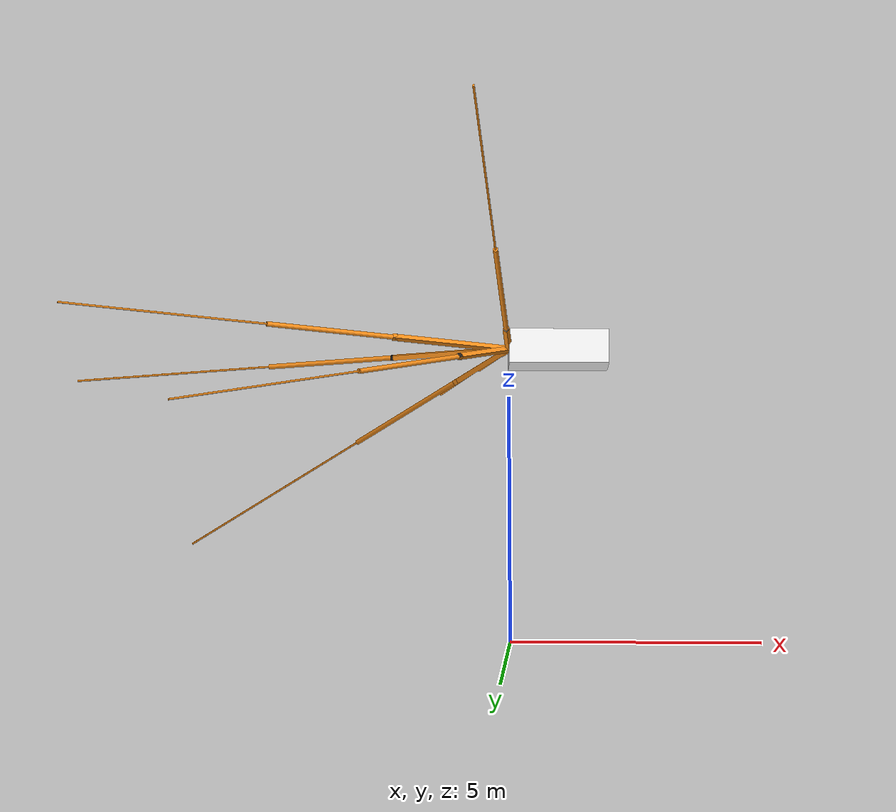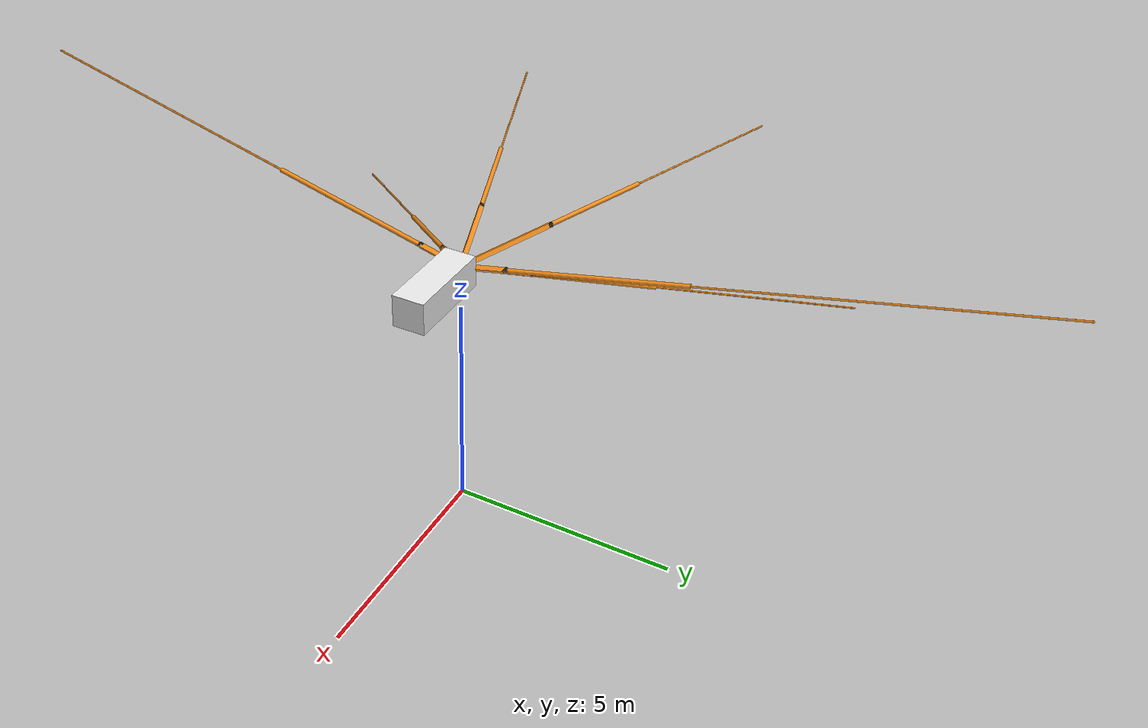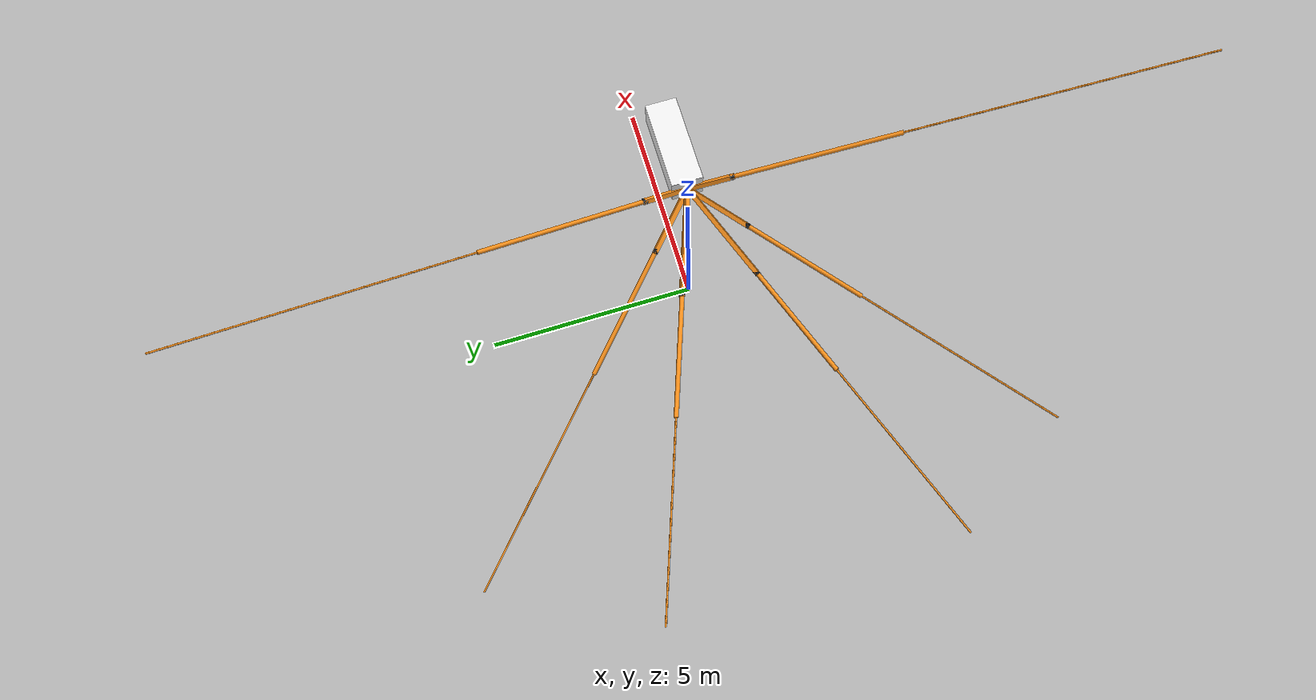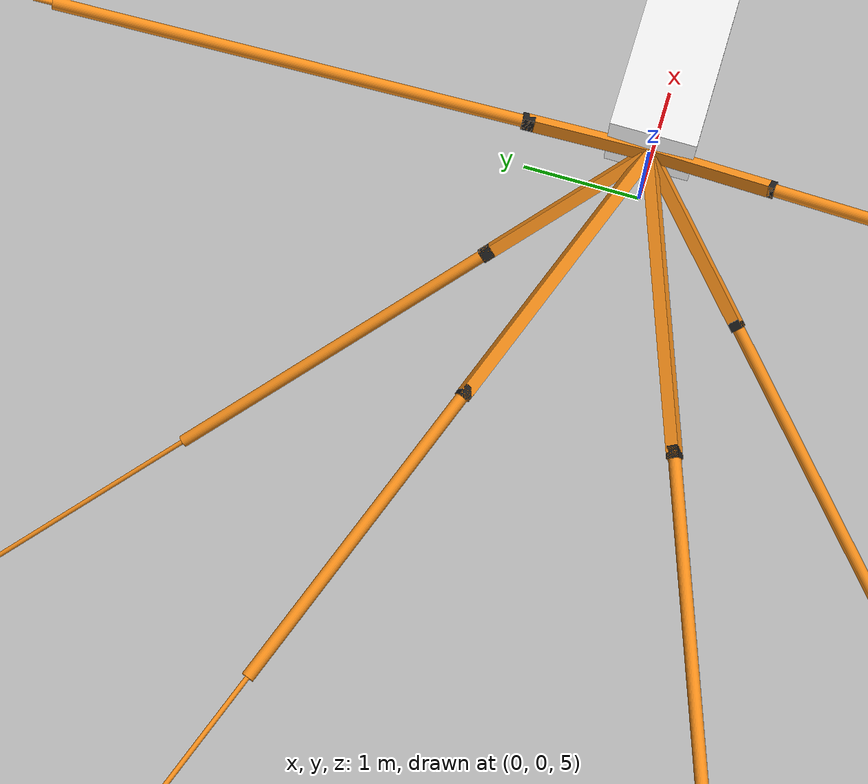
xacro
<?xml version="1.0"?>
<!-- Synthesis of an Ant Leg -->
<robot name="antmodel" xmlns:xacro="http://www.ros.org/wiki/xacro">

  <!-- Constants for robot dimensions -->
  <xacro:property name="PI" value="3.1415926535897931"/>
  <xacro:property name="mass" value="0.024357719" /> <!-- arbitrary value for mass -->
  <xacro:property name="width" value="0.1" /> <!-- Square dimensions (widthxwidth) of beams -->
  <xacro:property name="height1" value="5" /> <!-- Link 1 -->
  <xacro:property name="height2" value="0.1" /> <!-- Link 2 -->
  <xacro:property name="height3" value="0.1" /> <!-- Link 3 -->

  <!-- Base transformation parameters -->
  <xacro:property name="AZ" value="6" /> <!-- -1*min(PZ(:,5)) 4.0127-->
  <xacro:property name="baseX" value="2.5329" /> <!-- link{1,2}(10,1) -->
  <xacro:property name="baseY" value="0.7012" /> <!-- link{1,2}(10,2) -->
  <xacro:property name="baseZ" value="-0.1418" /> <!-- link{1,2}(10,3) -->
  <xacro:property name="baseLf" value="2.4583" /> <!-- norm(links{1,2}(10,:)) --> <!-- Alessandro front: 2.632-->
  <xacro:property name="baseLm" value="1.5195" /> <!-- norm(links{1,2}(10,:)) -->
  <xacro:property name="baseLr" value="0.9946" /> <!-- norm(links{1,2}(10,:)) -->

 	<!-- front leg -->
  <xacro:property name="ARF" value="2.0197" /> <!-- tr2rpy(A{50})(1) --> <!-- Roll Pitch Yaw-->
  <xacro:property name="APF" value="-0.0082" /> <!-- tr2rpy(A{50})(2) -->
  <xacro:property name="AYF" value="-2.7991" /> <!-- tr2rpy(A{50})(3) -->
 	<!-- middle leg -->
  <xacro:property name="ARM" value="0.5579" /> <!-- tr2rpy(A{50})(1) -->
  <xacro:property name="APM" value="0.2813" /> <!-- tr2rpy(A{50})(2) -->
  <xacro:property name="AYM" value="-2.3565" /> <!-- tr2rpy(A{50})(3) -->
 	<!-- rear leg -->
  <xacro:property name="ARR" value="2.5284" /> <!-- tr2rpy(A{50})(1) -->
  <xacro:property name="APR" value="-0.1604" /> <!-- tr2rpy(A{50})(2) -->
  <xacro:property name="AYR" value="-1.6656" /> <!-- tr2rpy(A{50})(3) -->

  <!-- Antleg Parameter --> 	<!-- front leg -->
  <xacro:property name="femur_lenF" value="2.6999"/> <!-- length of femur segment stats{2,2}(1,3)-->
  <xacro:property name="femur_radF" value="0.05"/> <!-- radius of femur segment -->
  <xacro:property name="tibia_lenF" value="4.2717"/> <!-- length of tibia + tarsus segment stats{2,2}(1,4)-->
  <xacro:property name="tibia_radF" value="0.02"/>

  <!-- Antleg Parameter --> 	<!-- middle leg -->
  <xacro:property name="femur_lenM" value="2.9503"/> <!-- length of femur segment stats{2,2}(1,3)-->
  <xacro:property name="femur_radM" value="0.05"/> <!-- radius of femur segment -->
  <xacro:property name="tibia_lenM" value="5.1827"/> <!-- length of tibia + tarsus segment stats{2,2}(1,4)-->
  <xacro:property name="tibia_radM" value="0.02"/>

  <!-- Antleg Parameter --> 	<!-- rear leg -->
  <xacro:property name="femur_lenR" value="3.7715"/> <!-- length of femur segment stats{2,2}(1,3)-->
  <xacro:property name="femur_radR" value="0.05"/> <!-- radius of femur segment -->
  <xacro:property name="tibia_lenR" value="6.8218"/> <!-- length of tibia + tarsus segment stats{2,2}(1,4)-->
  <xacro:property name="tibia_radR" value="0.02"/>

  <!-- Body Parameters -->
  <xacro:property name="body_height" value="0.7" /> <!-- Height of body rectangle -->
  <xacro:property name="body_length" value="2" /> <!-- Length of body rectangle  -->
  <xacro:property name="body_width" value="0.7" /> <!-- Width of body rectangle  -->
  <xacro:property name="body_mass" value="0.97559947" /> <!-- Body mass -->

  <!-- Import all Gazebo-customization elements, including Gazebo colors -->
  <xacro:include filename="$(find antmodel_description)/urdf/antmodel.gazebo" />
  <!-- Import Rviz colors -->
  <xacro:include filename="$(find antmodel_description)/urdf/materials.xacro" />

<!-- to fix body-->
<link name="world" />
<joint name="world_joint"  type="fixed">
    <origin xyz="0 0 ${AZ/2}" rpy="0 0 0" />
    <parent link="world"/>
    <child link="body"/>
</joint>

<link name="body">
    <visual>
      <origin xyz="${body_length/2} 0 ${AZ/2}" rpy="0 0 0"/>
      <geometry>
	<box size="${body_length} ${body_width} ${body_height}"/>
      </geometry>
    </visual>

    <inertial>
      <origin xyz="0 0 0" rpy="0 0 0"/>
      <mass value="${body_mass}"/>
<inertia ixx="3.1081800"  ixy="-0.25460189"  ixz="2.0318174" iyy="6.3787776" iyz="0.16417863" izz="5.3316425" />
        </inertial>
  </link>

   <gazebo reference="body">
   <material>Gazebo/White</material>
  </gazebo>

<!-- Leg Macro -->
<xacro:macro name="leg" params="suffix xyz rpy baseL femur_len femur_rad tibia_len tibia_rad">

 <!-- Base -->
  <link name="base_${suffix}">

    <visual>
      <origin xyz="${baseL/2} 0 0" rpy="0 0 0"/>
      <geometry>
	<box size="${baseL} ${width} ${width}"/>
      </geometry>
      <material name="orange"/>
    </visual>

    <inertial>
      <origin xyz="0 0 ${height1/2}" rpy="0 0 0"/>
      <mass value="${mass}"/>
      <inertia
	  ixx="${mass / 12.0 * (width*width + height1*height1)}" ixy="0.0" ixz="0.0"
	  iyy="${mass / 12.0 * (height1*height1 + width*width)}" iyz="0.0"
	  izz="${mass / 12.0 * (width*width + width*width)}"/>
    </inertial>
  </link>

<!-- Coxa Link -->
  <link name="coxa_${suffix}">
    <collision>
      <origin xyz="0 0 0" rpy="0 0 0"/>
      <geometry>
	<box size="${width} ${width} ${height2}"/>
      </geometry>
    </collision>

    <visual>
      <origin xyz="0 0 0" rpy="0 0 0"/>
      <geometry>
	<box size="${width} ${width} ${height2}"/>
      </geometry>
      <material name="black"/>
    </visual>

    <inertial>
      <origin xyz="0 0 0" rpy="0 0 0"/>
      <mass value="${mass}"/>
    <inertia ixx="0.0051411124"  ixy="-0.00057530255"  ixz="-0.000024729049" iyy="0.0081915737" iyz="-0.000019223094" izz="0.0011379812" />
</inertial>
  </link>

    <!-- Link DOF1 -->
  <link name="link1_${suffix}">
    <collision>
      <origin xyz="0 0 0" rpy="0 0 0"/>
      <geometry>
	<box size="${width} ${width} ${height2}"/>
      </geometry>
    </collision>

    <visual>
      <origin xyz="0 0 0" rpy="0 0 0"/>
      <geometry>
	<box size="${width} ${width} ${height2}"/>
      </geometry>
      <material name="black"/>
    </visual>

    <inertial>
      <origin xyz="0 0 0" rpy="0 0 0"/>
      <mass value="${mass}"/>
    <inertia ixx="0.0051411124"  ixy="-0.00057530255"  ixz="-0.000024729049" iyy="0.0081915737" iyz="-0.000019223094" izz="0.0011379812" />
</inertial>
  </link>

    <!-- Link DOF2 -->
  <link name="link2_${suffix}">
    <collision>
      <origin xyz="0 0 0" rpy="0 0 0"/>
      <geometry>
	<box size="${width} ${width} ${height3}"/>
      </geometry>
    </collision>

    <visual>
      <origin xyz="0 0 0" rpy="0 0 0"/>
      <geometry>
	<box size="${width} ${width} ${height3}"/>
      </geometry>
      <material name="orange"/>
    </visual>

    <inertial>
      <origin xyz="0 0 0" rpy="0 0 0"/>
      <mass value="${mass}"/>
    <inertia ixx="0.0051411124"  ixy="-0.00057530255"  ixz="-0.000024729049" iyy="0.0081915737" iyz="-0.000019223094" izz="0.0011379812" />
</inertial>
  </link>

  <!-- Femur Link -->
  <link name="femur_${suffix}">
    <collision>
      <origin xyz="${femur_len/2} 0 0" rpy="0 ${PI/2} 0"/>
      <geometry>
	<cylinder length="${femur_len}" radius="${femur_rad}"/>
      </geometry>
    </collision>

    <visual>
      <origin xyz="${femur_len/2} 0 0" rpy="0 ${PI/2} 0"/>
      <geometry>
	<cylinder length="${femur_len}" radius="${femur_rad}"/>
      </geometry>
      <material name="orange"/>
    </visual>

    <inertial>
      <origin xyz="${femur_len/2} 0 0" rpy="0 0 0"/>
      <mass value="${mass}"/>
    <inertia ixx="0.0051411124"  ixy="-0.00057530255"  ixz="-0.000024729049" iyy="0.0081915737" iyz="-0.000019223094" izz="0.0011379812" />
</inertial>
  </link>

  <!-- Tibia Link -->
  <link name="tibia_${suffix}">
    <collision>
      <origin xyz="${tibia_len/2} 0 0" rpy="0 ${PI/2} 0"/>
      <geometry>
	<cylinder length="${tibia_len}" radius="${tibia_rad}"/>
      </geometry>
    </collision>

    <visual>
      <origin xyz="${tibia_len/2} 0 0" rpy="0 ${PI/2} 0"/>
      <geometry>
	<cylinder length="${tibia_len}" radius="${tibia_rad}"/>
      </geometry>
      <material name="orange"/>
    </visual>

    <inertial>
      <origin xyz="${tibia_len/2} 0 0" rpy="0 0 0"/>
      <mass value="${mass}"/>
    <inertia ixx="0.0051411124"  ixy="-0.00057530255"  ixz="-0.000024729049" iyy="0.0081915737" iyz="-0.000019223094" izz="0.0011379812" />
</inertial>

<mu1>1</mu1>
<mu2>1</mu2>
  </link>

<joint name="j_body_${suffix}" type="fixed">
        <parent link="body"/>
        <child link="base_${suffix}"/>
	<origin xyz="${xyz}" rpy="${rpy}" />
</joint>

  <!-- Frame {A} -->
  <joint name="A_${suffix}" type="fixed">
    <parent link="base_${suffix}"/>
    <child link="coxa_${suffix}"/>
    <origin xyz="${baseL} 0 0"/>
  </joint>

  <!-- DOF1 = q1 -->
  <joint name="joint1_${suffix}" type="continuous">
    <parent link="coxa_${suffix}"/>
    <child link="link1_${suffix}"/>
    <origin xyz="0 0 0" rpy="0 0 0"/>
    <axis xyz="0 0 1"/>
    <dynamics damping="1"/>
  </joint>

  <!-- DOF2 = q2 -->
  <joint name="joint2_${suffix}" type="continuous">
    <parent link="link1_${suffix}"/>
    <child link="link2_${suffix}"/>
    <origin xyz="0 0 0" rpy="${-PI/2} 0 0"/>
    <axis xyz="0 0 1"/>
    <dynamics damping="1"/>
  </joint>

  <!-- DOF3 = q3 -->
  <joint name="joint3_${suffix}" type="continuous">
    <parent link="link2_${suffix}"/>
    <child link="femur_${suffix}"/>
    <origin xyz="0 0 0" rpy="${PI/2} 0 0"/>
    <axis xyz="0 0 1"/>
    <dynamics damping="1"/>
  </joint>

  <!-- DOF4 = q4 -->
  <joint name="joint4_${suffix}" type="continuous">
    <parent link="femur_${suffix}"/>
    <child link="tibia_${suffix}"/>
    <origin xyz="${femur_len} 0 0" rpy="0 0 0"/>
    <axis xyz="0 0 1"/>
    <dynamics damping="1"/>
  </joint>

  <gazebo reference="coxa_${suffix}">
    <material>Gazebo/Blue</material>
  </gazebo>
   <gazebo reference="femur_${suffix}">
    <material>Gazebo/Green</material>
  </gazebo>
   <gazebo reference="link1_${suffix}">
    <material>Gazebo/Orange</material>
  </gazebo>
   <gazebo reference="link2_${suffix}">
    <material>Gazebo/Red</material>
  </gazebo>

  <!-- Transmission to ROS -->
  <transmission name="tran1_${suffix}">
    <type>transmission_interface/SimpleTransmission</type>
    <joint name="joint1_${suffix}">
      <hardwareInterface>hardware_interface/EffortJointInterface</hardwareInterface>
    </joint>
    <actuator name="motor1_${suffix}">
      <hardwareInterface>hardware_interface/EffortJointInterface</hardwareInterface>
      <mechanicalReduction>1</mechanicalReduction>
    </actuator>
  </transmission>

  <transmission name="tran2_${suffix}">
    <type>transmission_interface/SimpleTransmission</type>
    <joint name="joint2_${suffix}">
      <hardwareInterface>hardware_interface/EffortJointInterface</hardwareInterface>
    </joint>
    <actuator name="motor2_${suffix}">
      <hardwareInterface>hardware_interface/EffortJointInterface</hardwareInterface>
      <mechanicalReduction>1</mechanicalReduction>
    </actuator>
  </transmission>

  <transmission name="tran3_${suffix}">
    <type>transmission_interface/SimpleTransmission</type>
    <joint name="joint3_${suffix}">
      <hardwareInterface>hardware_interface/EffortJointInterface</hardwareInterface>
    </joint>
    <actuator name="motor3_${suffix}">
      <hardwareInterface>hardware_interface/EffortJointInterface</hardwareInterface>
      <mechanicalReduction>1</mechanicalReduction>
    </actuator>
  </transmission>
  <transmission name="tran4_${suffix}">
    <type>transmission_interface/SimpleTransmission</type>
    <joint name="joint4_${suffix}">
      <hardwareInterface>hardware_interface/EffortJointInterface</hardwareInterface>
    </joint>
    <actuator name="motor4_${suffix}">
      <hardwareInterface>hardware_interface/EffortJointInterface</hardwareInterface>
      <mechanicalReduction>1</mechanicalReduction>
    </actuator>
  </transmission>

</xacro:macro>

<xacro:leg suffix="lf" xyz="0 0 ${AZ/2}" rpy="${ARF} ${APF} ${AYF}" baseL = "${baseLf}" femur_len ="${femur_lenF}" femur_rad="${femur_radF}" tibia_len ="${tibia_lenF}" tibia_rad="${tibia_radF}" />
<xacro:leg suffix="lm" xyz="0 0 ${AZ/2}" rpy="${ARM} ${APM} ${AYM}" baseL = "${baseLm}" femur_len ="${femur_lenM}" femur_rad="${femur_radM}" tibia_len ="${tibia_lenM}" tibia_rad="${tibia_radM}"/>
<xacro:leg suffix="lr" xyz="0 0 ${AZ/2}" rpy="${ARR} ${APR} ${AYR}" baseL = "${baseLr}" femur_len ="${femur_lenR}" femur_rad="${femur_radR}" tibia_len ="${tibia_lenR}" tibia_rad="${tibia_radR}"/>

<xacro:leg suffix="rf" xyz="0 0 ${AZ/2}" rpy="${PI-ARF} ${APF} ${-AYF}" baseL = "${baseLf}" femur_len ="${femur_lenF}" femur_rad="${femur_radF}" tibia_len ="${tibia_lenF}" tibia_rad="${tibia_radF}"/>
<xacro:leg suffix="rm" xyz="0 0 ${AZ/2}" rpy="${PI-ARM} ${APM} ${-AYM}" baseL = "${baseLm}" femur_len ="${femur_lenM}" femur_rad="${femur_radM}" tibia_len ="${tibia_lenM}" tibia_rad="${tibia_radM}"/>
<xacro:leg suffix="rr" xyz="0 0 ${AZ/2}" rpy="${PI-ARR} ${APR} ${-AYR}" baseL = "${baseLr}" femur_len ="${femur_lenR}" femur_rad="${femur_radR}" tibia_len ="${tibia_lenR}" tibia_rad="${tibia_radR}"/>

</robot>
